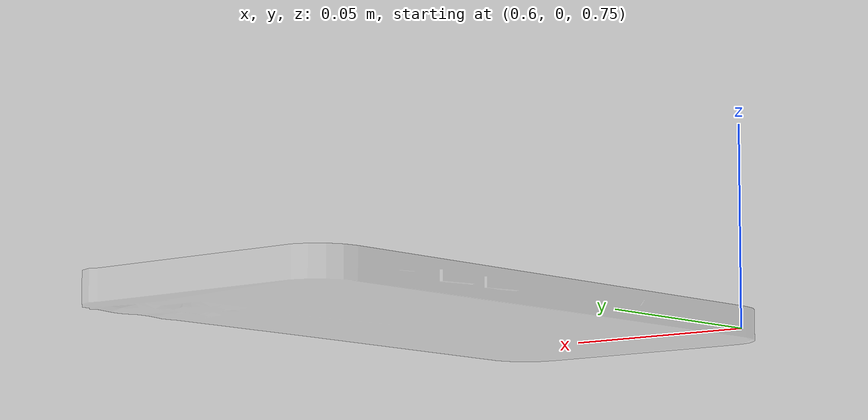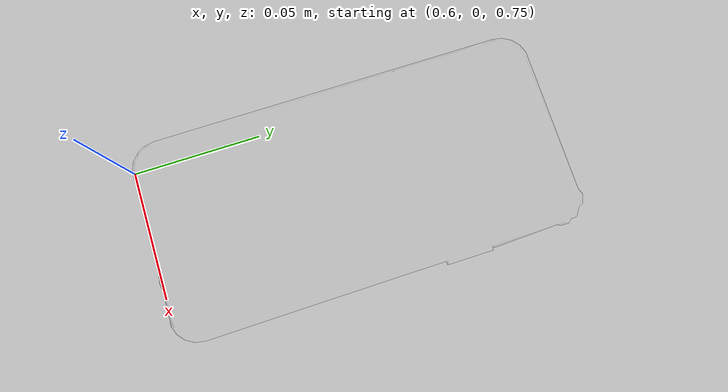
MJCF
<mujoco model="iPhone12ProMax">
  <asset>
    <mesh file="meshes/iPhone 12 Pro Max.stl" name="iPhone12ProMax_mesh"/>
    <texture file="../textures/black_sq.png" name="tex-iPhone"/>
    <material name="iPhone_back" reflectance="0.7" texrepeat="1 1" texture="tex-iPhone" texuniform="true"/>
  </asset>
  <worldbody>
    <body>
      <body name="object">
        <joint name="iPhone12_joint" pos="0 0 0" type="slide" axis="1 1 0" damping="1"/>
        <geom pos="0.59 0 0.745" mesh="iPhone12ProMax_mesh" type="mesh" material="iPhone_back" rgba="0.8 0.8 0.8 0.3" size="0.001 0.001 0.001" conaffinity="1" contype="1" group="1" mass="0.228"/>
        <geom pos="0.59 0 0.745" mesh="iPhone12ProMax_mesh" type="mesh" group="0" rgba="0.8 0.8 0.8 0.3"/>
      </body>
    </body>
  </worldbody>
</mujoco>
